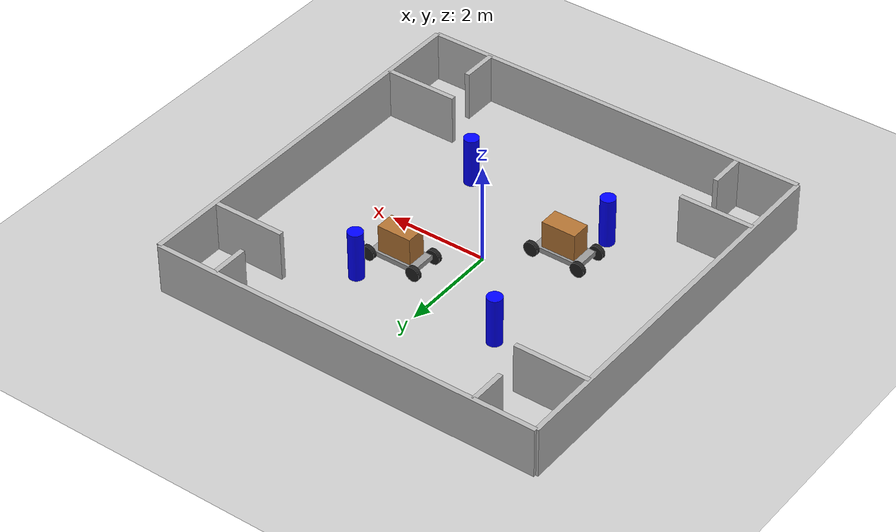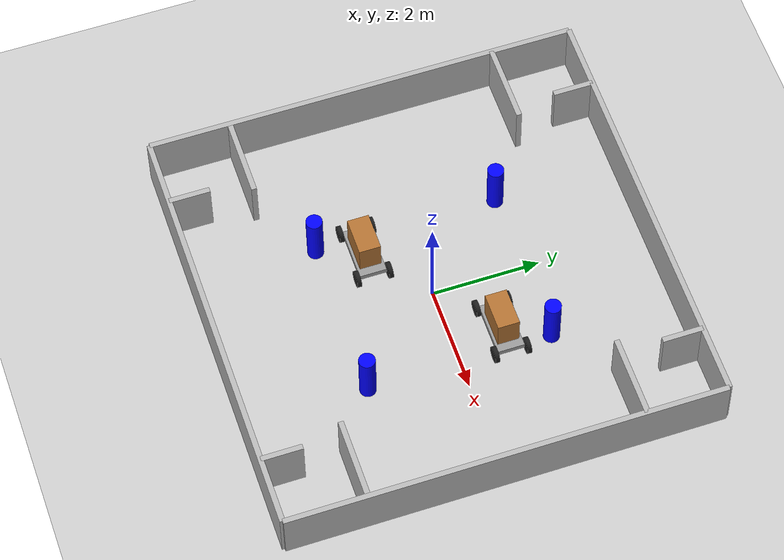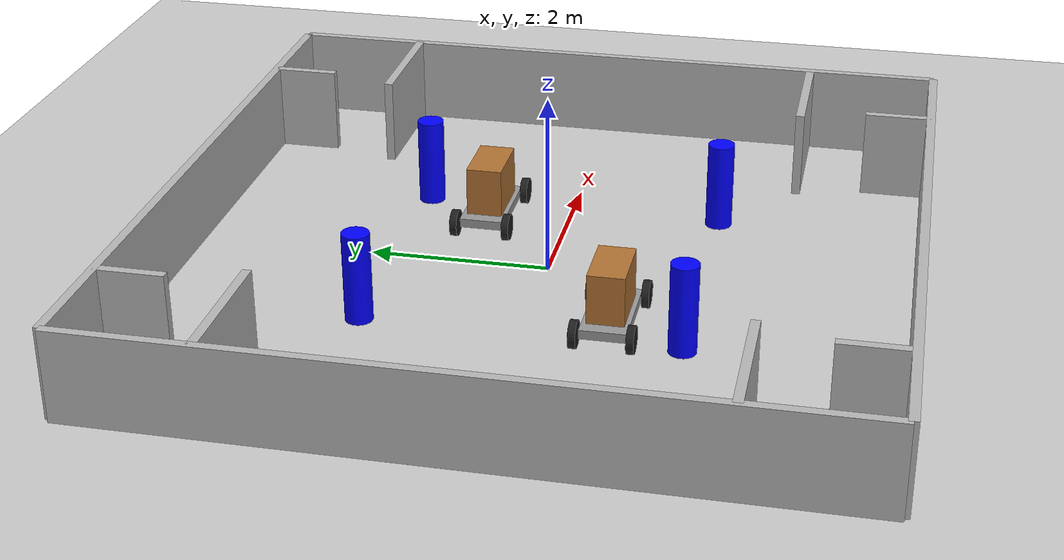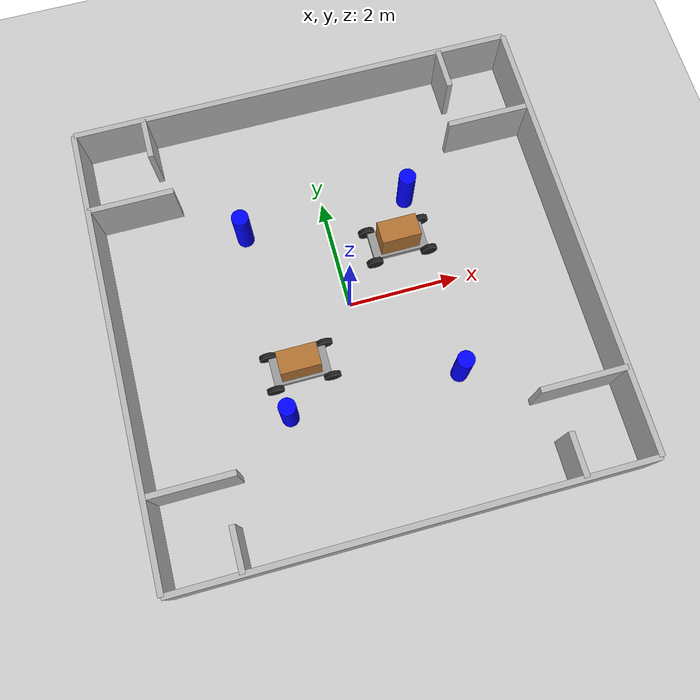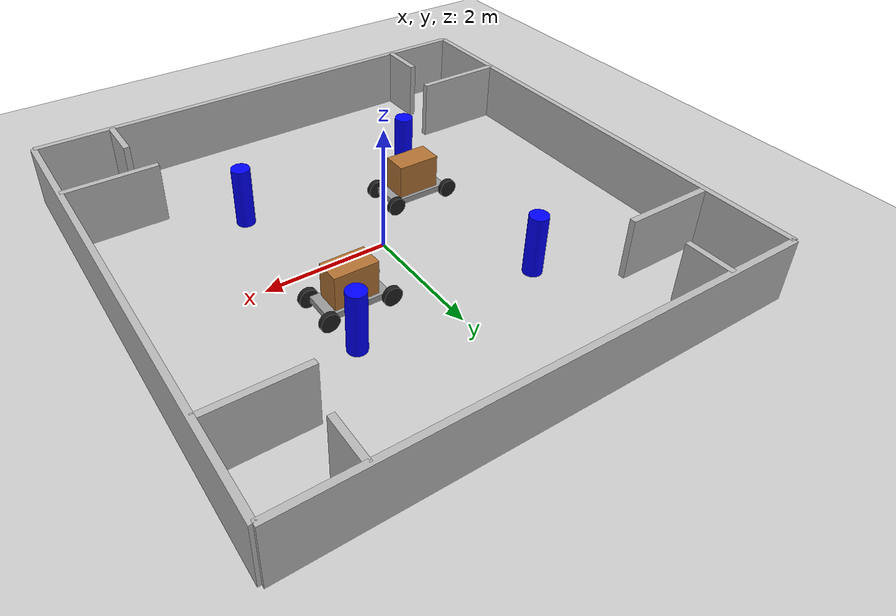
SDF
<sdf version="1.6">
 <world name="default">
  <include><uri>model://ground_plane</uri></include>
  <include><uri>model://sun</uri></include>
  <model name="outer_walls">
   <static>true</static>
   <link name="link">
    <collision name="n"><pose>0 4 0.5 0 0 0</pose><geometry><box><size>8 0.1 1</size></box></geometry></collision>
    <visual name="n_v"><pose>0 4 0.5 0 0 0</pose><geometry><box><size>8 0.1 1</size></box></geometry></visual>
    <collision name="s">
     <pose>0 -4 0.5 0 0 0</pose>
     <geometry><box><size>8 0.1 1</size></box></geometry>
    </collision>
    <visual name="s_v"><pose>0 -4 0.5 0 0 0</pose><geometry><box><size>8 0.1 1</size></box></geometry></visual>
    <collision name="e"><pose>4 0 0.5 0 0 0</pose><geometry><box><size>0.1 8 1</size></box></geometry></collision>
    <visual name="e_v"><pose>4 0 0.5 0 0 0</pose><geometry><box><size>0.1 8 1</size></box></geometry></visual>
    <collision name="w">
     <pose>-4 0 0.5 0 0 0</pose>
     <geometry><box><size>0.1 8 1</size></box></geometry>
    </collision>
    <visual name="w_v"><pose>-4 0 0.5 0 0 0</pose><geometry><box><size>0.1 8 1</size></box></geometry></visual>
   </link>
  </model>
  <model name="internal_walls">
   <static>true</static>
   <link name="link">
    <collision name="tl_h_c">
     <pose>-3.25 2.5 0.5 0 0 0</pose>
     <geometry><box><size>1.5 0.1 1</size></box></geometry>
    </collision>
    <visual name="tl_h">
     <pose>-3.25 2.5 0.5 0 0 0</pose>
     <geometry><box><size>1.5 0.1 1</size></box></geometry>
    </visual>
    <collision name="tl_v_c">
     <pose>-2.75 3.625 0.5 0 0 0</pose>
     <geometry><box><size>0.1 0.75 1</size></box></geometry>
    </collision>
    <visual name="tl_v">
     <pose>-2.75 3.625 0.5 0 0 0</pose>
     <geometry><box><size>0.1 0.75 1</size></box></geometry>
    </visual>
    <collision name="tr_h_c">
     <pose>3.25 2.5 0.5 0 0 0</pose>
     <geometry><box><size>1.5 0.1 1</size></box></geometry>
    </collision>
    <visual name="tr_h">
     <pose>3.25 2.5 0.5 0 0 0</pose>
     <geometry><box><size>1.5 0.1 1</size></box></geometry>
    </visual>
    <collision name="tr_v_c">
     <pose>2.75 3.625 0.5 0 0 0</pose>
     <geometry><box><size>0.1 0.75 1</size></box></geometry>
    </collision>
    <visual name="tr_v">
     <pose>2.75 3.625 0.5 0 0 0</pose>
     <geometry><box><size>0.1 0.75 1</size></box></geometry>
    </visual>
    <collision name="bl_h_c">
     <pose>-3.25 -2.5 0.5 0 0 0</pose>
     <geometry><box><size>1.5 0.1 1</size></box></geometry>
    </collision>
    <visual name="bl_h">
     <pose>-3.25 -2.5 0.5 0 0 0</pose>
     <geometry><box><size>1.5 0.1 1</size></box></geometry>
    </visual>
    <collision name="bl_v_c">
     <pose>-2.75 -3.625 0.5 0 0 0</pose>
     <geometry><box><size>0.1 0.75 1</size></box></geometry>
    </collision>
    <visual name="bl_v">
     <pose>-2.75 -3.625 0.5 0 0 0</pose>
     <geometry><box><size>0.1 0.75 1</size></box></geometry>
    </visual>
    <collision name="br_h_c">
     <pose>3.25 -2.5 0.5 0 0 0</pose>
     <geometry><box><size>1.5 0.1 1</size></box></geometry>
    </collision>
    <visual name="br_h">
     <pose>3.25 -2.5 0.5 0 0 0</pose>
     <geometry><box><size>1.5 0.1 1</size></box></geometry>
    </visual>
    <collision name="br_v_c">
     <pose>2.75 -3.625 0.5 0 0 0</pose>
     <geometry><box><size>0.1 0.75 1</size></box></geometry>
    </collision>
    <visual name="br_v">
     <pose>2.75 -3.625 0.5 0 0 0</pose>
     <geometry><box><size>0.1 0.75 1</size></box></geometry>
    </visual>
   </link>
  </model>
  <model name="ob1">
   <static>true</static>
   <pose>1.5 1.7 0.5 0 0 0</pose>
   <link name="l">
    <collision name="c">
     <geometry><cylinder><radius>0.15</radius><length>1</length></cylinder></geometry>
    </collision>
    <visual name="v">
     <geometry><cylinder><radius>0.15</radius><length>1</length></cylinder></geometry>
     <material><ambient>0 0 1 1</ambient></material>
    </visual>
   </link>
  </model>
  <model name="ob2">
   <static>true</static>
   <pose>-1.5 1.7 0.5 0 0 0</pose>
   <link name="l">
    <collision name="c">
     <geometry><cylinder><radius>0.15</radius><length>1</length></cylinder></geometry>
    </collision>
    <visual name="v">
     <geometry><cylinder><radius>0.15</radius><length>1</length></cylinder></geometry>
     <material><ambient>0 0 1 1</ambient></material>
    </visual>
   </link>
  </model>
  <model name="ob3">
   <static>true</static>
   <pose>-1.5 -1.7 0.5 0 0 0</pose>
   <link name="l">
    <collision name="c">
     <geometry><cylinder><radius>0.15</radius><length>1</length></cylinder></geometry>
    </collision>
    <visual name="v">
     <geometry><cylinder><radius>0.15</radius><length>1</length></cylinder></geometry>
     <material><ambient>0 0 1 1</ambient></material>
    </visual>
   </link>
  </model>
  <model name="ob4">
   <static>true</static>
   <pose>1.5 -1.7 0.5 0 0 0</pose>
   <link name="l">
    <collision name="c">
     <geometry><cylinder><radius>0.15</radius><length>1</length></cylinder></geometry>
    </collision>
    <visual name="v">
     <geometry><cylinder><radius>0.15</radius><length>1</length></cylinder></geometry>
     <material><ambient>0 0 1 1</ambient></material>
    </visual>
   </link>
  </model>
  <model name="warehouse_cart_2">
   <static>false</static>
   <pose>-1.12955 -0.9 0 0 0 0</pose>
   <link name="chassis">
    <pose>0 0 0.15  0 0 0</pose>
    <inertial>
     <pose>0.1 0 0  0 0 0</pose>
     <mass>10</mass>
     <inertia>
      <ixx>0.21666666666666667</ixx>
      <iyy>0.8416666666666667</iyy>
      <izz>1.0416666666666667</izz>
      <ixy>0</ixy>
      <ixz>0</ixz>
      <iyz>0</iyz>
     </inertia>
    </inertial>
    <collision name="collision"><geometry><box><size>1.0 0.5 0.1</size></box></geometry></collision>
    <visual name="visual">
     <geometry><box><size>1.0 0.5 0.1</size></box></geometry>
     <material>
      <script><uri>file://media/materials/scripts/gazebo.material</uri><name>Gazebo/Grey</name></script>
     </material>
    </visual>
    <collision name="payload_collision">
     <pose>0 0 0.30 0 0 0</pose>
     <geometry><box><size>0.70 0.40 0.60</size></box></geometry>
    </collision>
    <visual name="payload_visual">
     <pose>0 0 0.30 0 0 0</pose>
     <geometry><box><size>0.70 0.40 0.60</size></box></geometry>
     <material><ambient>0.55 0.32 0.12 1</ambient><diffuse>0.70 0.45 0.20 1</diffuse></material>
    </visual>
   </link>
   <link name="wheel_front_left">
    <pose>0.5 0.298 0.15  -1.5707963267948966 0 0</pose>
    <inertial>
     <mass>0.5</mass>
     <inertia>
      <ixx>0.0030791666666666667</ixx>
      <iyy>0.0030791666666666667</iyy>
      <izz>0.005625</izz>
      <ixy>0</ixy>
      <ixz>0</ixz>
      <iyz>0</iyz>
     </inertia>
    </inertial>
    <collision name="collision">
     <geometry><cylinder><radius>0.15</radius><length>0.08</length></cylinder></geometry>
    </collision>
    <visual name="visual">
     <geometry><cylinder><radius>0.15</radius><length>0.08</length></cylinder></geometry>
     <material>
      <script><uri>file://media/materials/scripts/gazebo.material</uri><name>Gazebo/Black</name></script>
     </material>
    </visual>
   </link>
   <joint name="wheel_front_left_spin" type="revolute">
    <parent>chassis</parent>
    <child>wheel_front_left</child>
    <axis><xyz>0 0 1</xyz></axis>
   </joint>
   <link name="wheel_front_right">
    <pose>0.5 -0.298 0.15  -1.5707963267948966 0 0</pose>
    <inertial>
     <mass>0.5</mass>
     <inertia>
      <ixx>0.0030791666666666667</ixx>
      <iyy>0.0030791666666666667</iyy>
      <izz>0.005625</izz>
      <ixy>0</ixy>
      <ixz>0</ixz>
      <iyz>0</iyz>
     </inertia>
    </inertial>
    <collision name="collision">
     <geometry><cylinder><radius>0.15</radius><length>0.08</length></cylinder></geometry>
    </collision>
    <visual name="visual">
     <geometry><cylinder><radius>0.15</radius><length>0.08</length></cylinder></geometry>
     <material>
      <script><uri>file://media/materials/scripts/gazebo.material</uri><name>Gazebo/Black</name></script>
     </material>
    </visual>
   </link>
   <joint name="wheel_front_right_spin" type="revolute">
    <parent>chassis</parent>
    <child>wheel_front_right</child>
    <axis><xyz>0 0 1</xyz></axis>
   </joint>
   <link name="wheel_rear_left">
    <pose>-0.5 0.298 0.15  -1.5707963267948966 0 0</pose>
    <inertial>
     <mass>0.5</mass>
     <inertia>
      <ixx>0.0030791666666666667</ixx>
      <iyy>0.0030791666666666667</iyy>
      <izz>0.005625</izz>
      <ixy>0</ixy>
      <ixz>0</ixz>
      <iyz>0</iyz>
     </inertia>
    </inertial>
    <collision name="collision">
     <geometry><cylinder><radius>0.15</radius><length>0.08</length></cylinder></geometry>
    </collision>
    <visual name="visual">
     <geometry><cylinder><radius>0.15</radius><length>0.08</length></cylinder></geometry>
     <material>
      <script><uri>file://media/materials/scripts/gazebo.material</uri><name>Gazebo/Black</name></script>
     </material>
    </visual>
   </link>
   <joint name="wheel_rear_left_spin" type="revolute">
    <parent>chassis</parent>
    <child>wheel_rear_left</child>
    <axis><xyz>0 0 1</xyz></axis>
   </joint>
   <link name="wheel_rear_right">
    <pose>-0.5 -0.298 0.15  -1.5707963267948966 0 0</pose>
    <inertial>
     <mass>0.5</mass>
     <inertia>
      <ixx>0.0030791666666666667</ixx>
      <iyy>0.0030791666666666667</iyy>
      <izz>0.005625</izz>
      <ixy>0</ixy>
      <ixz>0</ixz>
      <iyz>0</iyz>
     </inertia>
    </inertial>
    <collision name="collision">
     <geometry><cylinder><radius>0.15</radius><length>0.08</length></cylinder></geometry>
    </collision>
    <visual name="visual">
     <geometry><cylinder><radius>0.15</radius><length>0.08</length></cylinder></geometry>
     <material>
      <script><uri>file://media/materials/scripts/gazebo.material</uri><name>Gazebo/Black</name></script>
     </material>
    </visual>
   </link>
   <joint name="wheel_rear_right_spin" type="revolute">
    <parent>chassis</parent>
    <child>wheel_rear_right</child>
    <axis><xyz>0 0 1</xyz></axis>
   </joint>
   <plugin name="controller_2" filename="libgazebo_ros_planar_move.so">
    <ros><remapping>cmd_vel:=cmd_vel_obstacle_2</remapping><remapping>odom:=odom_obstacle_2</remapping></ros>
    <update_rate>20</update_rate>
    <robot_base_frame>warehouse_cart_2</robot_base_frame>
   </plugin>
  </model>
  <model name="warehouse_cart_4">
   <static>false</static>
   <pose>1.12955 0.9 0 0 0 0</pose>
   <link name="chassis">
    <pose>0 0 0.15  0 0 0</pose>
    <inertial>
     <pose>0.1 0 0  0 0 0</pose>
     <mass>10</mass>
     <inertia>
      <ixx>0.21666666666666667</ixx>
      <iyy>0.8416666666666667</iyy>
      <izz>1.0416666666666667</izz>
      <ixy>0</ixy>
      <ixz>0</ixz>
      <iyz>0</iyz>
     </inertia>
    </inertial>
    <collision name="collision"><geometry><box><size>1.0 0.5 0.1</size></box></geometry></collision>
    <visual name="visual">
     <geometry><box><size>1.0 0.5 0.1</size></box></geometry>
     <material>
      <script><uri>file://media/materials/scripts/gazebo.material</uri><name>Gazebo/Grey</name></script>
     </material>
    </visual>
    <collision name="payload_collision">
     <pose>0 0 0.30 0 0 0</pose>
     <geometry><box><size>0.70 0.40 0.60</size></box></geometry>
    </collision>
    <visual name="payload_visual">
     <pose>0 0 0.30 0 0 0</pose>
     <geometry><box><size>0.70 0.40 0.60</size></box></geometry>
     <material><ambient>0.55 0.32 0.12 1</ambient><diffuse>0.70 0.45 0.20 1</diffuse></material>
    </visual>
   </link>
   <link name="wheel_front_left">
    <pose>0.5 0.298 0.15  -1.5707963267948966 0 0</pose>
    <inertial>
     <mass>0.5</mass>
     <inertia>
      <ixx>0.0030791666666666667</ixx>
      <iyy>0.0030791666666666667</iyy>
      <izz>0.005625</izz>
      <ixy>0</ixy>
      <ixz>0</ixz>
      <iyz>0</iyz>
     </inertia>
    </inertial>
    <collision name="collision">
     <geometry><cylinder><radius>0.15</radius><length>0.08</length></cylinder></geometry>
    </collision>
    <visual name="visual">
     <geometry><cylinder><radius>0.15</radius><length>0.08</length></cylinder></geometry>
     <material>
      <script><uri>file://media/materials/scripts/gazebo.material</uri><name>Gazebo/Black</name></script>
     </material>
    </visual>
   </link>
   <joint name="wheel_front_left_spin" type="revolute">
    <parent>chassis</parent>
    <child>wheel_front_left</child>
    <axis><xyz>0 0 1</xyz></axis>
   </joint>
   <link name="wheel_front_right">
    <pose>0.5 -0.298 0.15  -1.5707963267948966 0 0</pose>
    <inertial>
     <mass>0.5</mass>
     <inertia>
      <ixx>0.0030791666666666667</ixx>
      <iyy>0.0030791666666666667</iyy>
      <izz>0.005625</izz>
      <ixy>0</ixy>
      <ixz>0</ixz>
      <iyz>0</iyz>
     </inertia>
    </inertial>
    <collision name="collision">
     <geometry><cylinder><radius>0.15</radius><length>0.08</length></cylinder></geometry>
    </collision>
    <visual name="visual">
     <geometry><cylinder><radius>0.15</radius><length>0.08</length></cylinder></geometry>
     <material>
      <script><uri>file://media/materials/scripts/gazebo.material</uri><name>Gazebo/Black</name></script>
     </material>
    </visual>
   </link>
   <joint name="wheel_front_right_spin" type="revolute">
    <parent>chassis</parent>
    <child>wheel_front_right</child>
    <axis><xyz>0 0 1</xyz></axis>
   </joint>
   <link name="wheel_rear_left">
    <pose>-0.5 0.298 0.15  -1.5707963267948966 0 0</pose>
    <inertial>
     <mass>0.5</mass>
     <inertia>
      <ixx>0.0030791666666666667</ixx>
      <iyy>0.0030791666666666667</iyy>
      <izz>0.005625</izz>
      <ixy>0</ixy>
      <ixz>0</ixz>
      <iyz>0</iyz>
     </inertia>
    </inertial>
    <collision name="collision">
     <geometry><cylinder><radius>0.15</radius><length>0.08</length></cylinder></geometry>
    </collision>
    <visual name="visual">
     <geometry><cylinder><radius>0.15</radius><length>0.08</length></cylinder></geometry>
     <material>
      <script><uri>file://media/materials/scripts/gazebo.material</uri><name>Gazebo/Black</name></script>
     </material>
    </visual>
   </link>
   <joint name="wheel_rear_left_spin" type="revolute">
    <parent>chassis</parent>
    <child>wheel_rear_left</child>
    <axis><xyz>0 0 1</xyz></axis>
   </joint>
   <link name="wheel_rear_right">
    <pose>-0.5 -0.298 0.15  -1.5707963267948966 0 0</pose>
    <inertial>
     <mass>0.5</mass>
     <inertia>
      <ixx>0.0030791666666666667</ixx>
      <iyy>0.0030791666666666667</iyy>
      <izz>0.005625</izz>
      <ixy>0</ixy>
      <ixz>0</ixz>
      <iyz>0</iyz>
     </inertia>
    </inertial>
    <collision name="collision">
     <geometry><cylinder><radius>0.15</radius><length>0.08</length></cylinder></geometry>
    </collision>
    <visual name="visual">
     <geometry><cylinder><radius>0.15</radius><length>0.08</length></cylinder></geometry>
     <material>
      <script><uri>file://media/materials/scripts/gazebo.material</uri><name>Gazebo/Black</name></script>
     </material>
    </visual>
   </link>
   <joint name="wheel_rear_right_spin" type="revolute">
    <parent>chassis</parent>
    <child>wheel_rear_right</child>
    <axis><xyz>0 0 1</xyz></axis>
   </joint>
   <plugin name="controller_4" filename="libgazebo_ros_planar_move.so">
    <ros><remapping>cmd_vel:=cmd_vel_obstacle_4</remapping><remapping>odom:=odom_obstacle_4</remapping></ros>
    <update_rate>20</update_rate>
    <robot_base_frame>warehouse_cart_4</robot_base_frame>
   </plugin>
  </model>
 </world>
</sdf>
